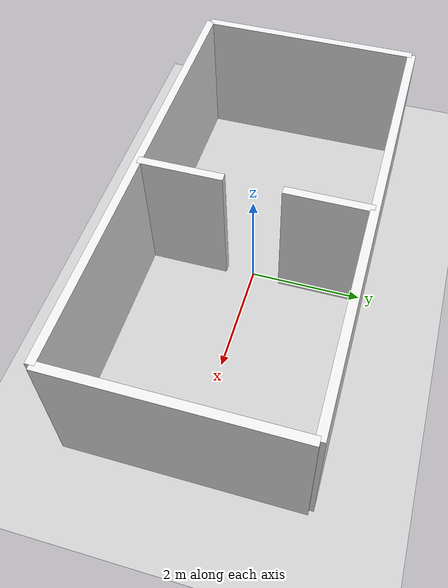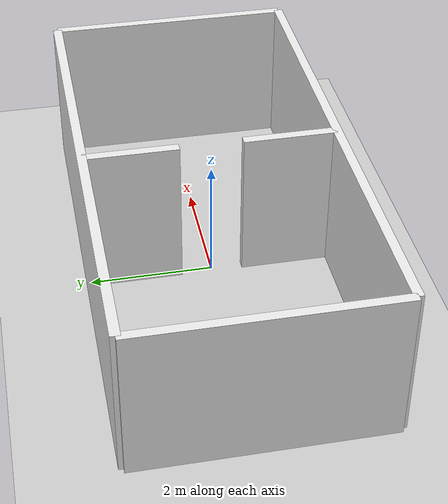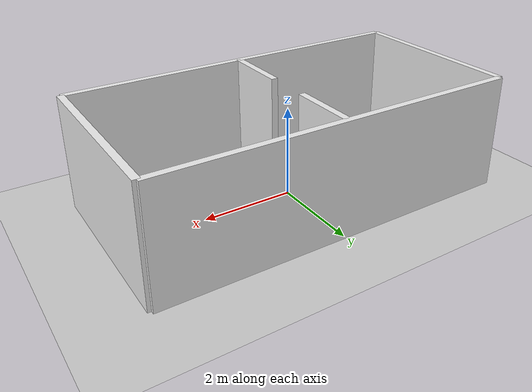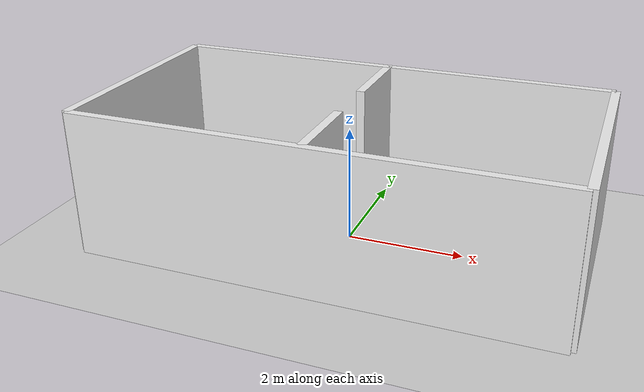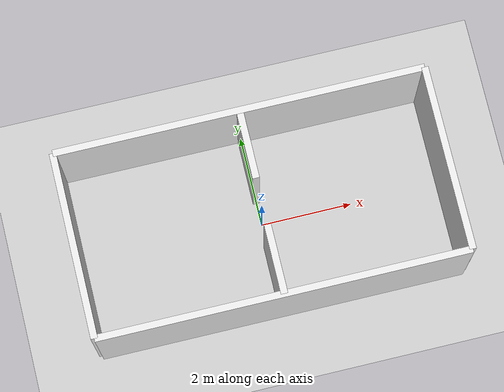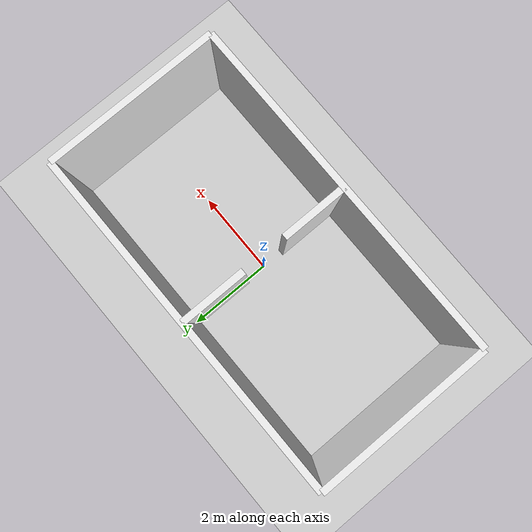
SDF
<?xml version='1.0'?>
<sdf version='1.6'>
  <world name='lste_portal_retry_single_door'>
    <gravity>0 0 -9.8</gravity>
    <physics type='ode'>
      <max_step_size>0.001</max_step_size>
      <real_time_factor>1</real_time_factor>
      <real_time_update_rate>1000</real_time_update_rate>
    </physics>
    <scene>
      <ambient>0.45 0.45 0.45 1</ambient>
      <background>0.72 0.72 0.72 1</background>
      <shadows>true</shadows>
    </scene>
    <light name='sun' type='directional'>
      <cast_shadows>true</cast_shadows>
      <pose>0 0 10 0 0 0</pose>
      <diffuse>0.8 0.8 0.8 1</diffuse>
      <specular>0.2 0.2 0.2 1</specular>
      <direction>-0.5 0.2 -0.9</direction>
    </light>
    <model name='ground_plane'>
      <static>true</static>
      <link name='link'>
        <collision name='collision'>
          <geometry>
            <plane>
              <normal>0 0 1</normal>
              <size>30 30</size>
            </plane>
          </geometry>
        </collision>
        <visual name='visual'>
          <geometry>
            <plane>
              <normal>0 0 1</normal>
              <size>30 30</size>
            </plane>
          </geometry>
          <material>
            <script>
              <uri>file://media/materials/scripts/gazebo.material</uri>
              <name>Gazebo/Grey</name>
            </script>
          </material>
        </visual>
      </link>
    </model>
    <model name='single_door_structure'>
      <static>true</static>
      <link name='walls'>
        <collision name='north_wall'>
          <pose>0 2 1.25 0 0 0</pose>
          <geometry><box><size>8 0.15 2.5</size></box></geometry>
        </collision>
        <visual name='north_wall_visual'>
          <pose>0 2 1.25 0 0 0</pose>
          <geometry><box><size>8 0.15 2.5</size></box></geometry>
          <material><script><uri>file://media/materials/scripts/gazebo.material</uri><name>Gazebo/White</name></script></material>
        </visual>
        <collision name='south_wall'>
          <pose>0 -2 1.25 0 0 0</pose>
          <geometry><box><size>8 0.15 2.5</size></box></geometry>
        </collision>
        <visual name='south_wall_visual'>
          <pose>0 -2 1.25 0 0 0</pose>
          <geometry><box><size>8 0.15 2.5</size></box></geometry>
          <material><script><uri>file://media/materials/scripts/gazebo.material</uri><name>Gazebo/White</name></script></material>
        </visual>
        <collision name='west_wall'>
          <pose>-4 0 1.25 0 0 0</pose>
          <geometry><box><size>0.15 4 2.5</size></box></geometry>
        </collision>
        <visual name='west_wall_visual'>
          <pose>-4 0 1.25 0 0 0</pose>
          <geometry><box><size>0.15 4 2.5</size></box></geometry>
          <material><script><uri>file://media/materials/scripts/gazebo.material</uri><name>Gazebo/White</name></script></material>
        </visual>
        <collision name='east_wall'>
          <pose>4 0 1.25 0 0 0</pose>
          <geometry><box><size>0.15 4 2.5</size></box></geometry>
        </collision>
        <visual name='east_wall_visual'>
          <pose>4 0 1.25 0 0 0</pose>
          <geometry><box><size>0.15 4 2.5</size></box></geometry>
          <material><script><uri>file://media/materials/scripts/gazebo.material</uri><name>Gazebo/White</name></script></material>
        </visual>
        <collision name='divider_lower'>
          <pose>0 -1.25 1.25 0 0 0</pose>
          <geometry><box><size>0.15 1.5 2.5</size></box></geometry>
        </collision>
        <visual name='divider_lower_visual'>
          <pose>0 -1.25 1.25 0 0 0</pose>
          <geometry><box><size>0.15 1.5 2.5</size></box></geometry>
          <material><script><uri>file://media/materials/scripts/gazebo.material</uri><name>Gazebo/White</name></script></material>
        </visual>
        <collision name='divider_upper'>
          <pose>0 1.25 1.25 0 0 0</pose>
          <geometry><box><size>0.15 1.5 2.5</size></box></geometry>
        </collision>
        <visual name='divider_upper_visual'>
          <pose>0 1.25 1.25 0 0 0</pose>
          <geometry><box><size>0.15 1.5 2.5</size></box></geometry>
          <material><script><uri>file://media/materials/scripts/gazebo.material</uri><name>Gazebo/White</name></script></material>
        </visual>
      </link>
    </model>
  </world>
</sdf>
